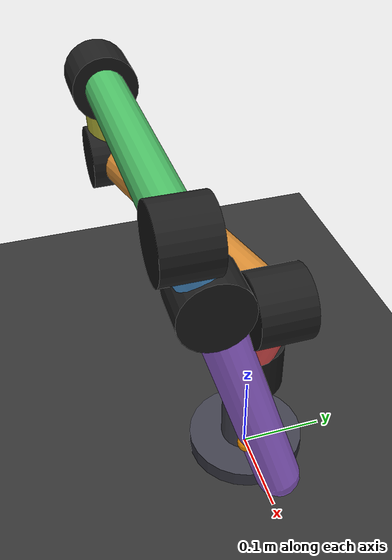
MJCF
<mujoco model="serial6r_posctrl">
  <compiler angle="radian" autolimits="true"/>
  <option integrator="implicitfast" gravity="0 0 -9.81" timestep="0.002"/>
  <default>
    <joint type="hinge" axis="0 0 1" damping="1.0" frictionloss="0.1" range="-3.14159 3.14159"/>
    <geom density="2000"/>
    <position kp="250" kv="25" ctrlrange="-3.14159 3.14159" forcerange="-150 150"/>
  </default>
  <worldbody>
    <light pos="0 0 2" dir="0 0 -1" diffuse="1 1 1"/>
    <geom name="floor" type="plane" size="2 2 0.1" rgba="0.2 0.2 0.2 1" density="0"/>
    <body name="base" pos="0 0 0">
      <geom name="foot" type="cylinder" fromto="0 0 0 0 0 0.02" size="0.07" rgba="0.25 0.25 0.3 1"/>
      <geom name="column" type="cylinder" fromto="0 0 0.02 0 0 0.0948" size="0.03" rgba="0.3 0.3 0.35 1"/>
      <body name="link1" pos="0.000000 0.000000 0.144763" quat="0.002699 0.000000 0.000000 -0.999996">
        <joint name="q1"/>
        <geom name="link1_g" type="capsule" fromto="0 0 0 -0.061099 0.000000 0.132184" size="0.025" rgba="0.85 0.3 0.3 1"/>
        <geom name="j1_g" type="cylinder" size="0.04 0.03" rgba="0.12 0.12 0.12 1"/>
        <body name="link2" pos="-0.061099 0.000000 0.132184" quat="0.707799 -0.706413 0.000828 0.000830">
          <joint name="q2"/>
          <geom name="link2_g" type="capsule" fromto="0 0 0 0.345932 0.000000 0.091502" size="0.025" rgba="0.85 0.55 0.2 1"/>
          <geom name="j2_g" type="cylinder" size="0.04 0.03" rgba="0.12 0.12 0.12 1"/>
          <body name="link3" pos="0.345932 0.000000 0.091502" quat="0.704644 -0.001551 -0.001561 -0.709558">
            <joint name="q3"/>
            <geom name="link3_g" type="capsule" fromto="0 0 0 0.103901 0.000000 0.005000" size="0.025" rgba="0.8 0.8 0.25 1"/>
            <geom name="j3_g" type="cylinder" size="0.04 0.03" rgba="0.12 0.12 0.12 1"/>
            <body name="link4" pos="0.103901 0.000000 0.005000" quat="0.705697 0.708499 0.003291 -0.003278">
              <joint name="q4"/>
              <geom name="link4_g" type="capsule" fromto="0 0 0 -0.000588 0.000000 0.344628" size="0.025" rgba="0.3 0.75 0.4 1"/>
              <geom name="j4_g" type="cylinder" size="0.04 0.03" rgba="0.12 0.12 0.12 1"/>
              <body name="link5" pos="-0.000588 0.000000 0.344628" quat="0.013053 -0.013195 -0.710781 -0.703168">
                <joint name="q5"/>
                <geom name="link5_g" type="capsule" fromto="0 0 0 0.074472 0.000000 -0.024818" size="0.025" rgba="0.3 0.6 0.85 1"/>
                <geom name="j5_g" type="cylinder" size="0.04 0.03" rgba="0.12 0.12 0.12 1"/>
                <body name="link6" pos="0.074472 0.000000 -0.024818" quat="0.501595 -0.493208 0.498313 0.506787">
                  <joint name="q6"/>
                  <geom name="link6_g" type="capsule" fromto="0 0 0 0.070882 -0.244194 0.030304" size="0.025" rgba="0.6 0.4 0.85 1"/>
                  <geom name="j6_g" type="cylinder" size="0.04 0.03" rgba="0.12 0.12 0.12 1"/>
                  <body name="ee" pos="0.070882 -0.244194 0.030304" quat="0.724562 -0.689210 0.000000 0.000000">
                    <site name="tcp" size="0.004" rgba="1 0 0 1"/>
                    <body name="d405_mount" pos="-0.03667 0.00798 0.05980" quat="0.68961 0.06423 -0.13501 -0.70858">
                      <inertial pos="0 0 0" mass="0.05" diaginertia="1e-5 1e-5 1e-5"/>
                      <site name="camera_optical_center" pos="0 0 0" size="0.010" rgba="1 0.6 0 0.9"/>
                      <camera name="ee_cam" mode="fixed" pos="0 0 0" fovy="65"/>
                    </body>
                  </body>
                </body>
              </body>
            </body>
          </body>
        </body>
      </body>
    </body>
  </worldbody>
  <actuator>
    <position name="p1" joint="q1"/>
    <position name="p2" joint="q2"/>
    <position name="p3" joint="q3"/>
    <position name="p4" joint="q4"/>
    <position name="p5" joint="q5"/>
    <position name="p6" joint="q6"/>
  </actuator>
  <sensor>
    <framepos name="tcp_pos" objtype="site" objname="tcp"/>
    <framequat name="tcp_quat" objtype="site" objname="tcp"/>
    <jointpos name="q1p" joint="q1"/>
  </sensor>
  <keyframe>
    <key name="ready" qpos="0.000000 -0.600000 0.600000 0.000000 0.600000 0.000000" ctrl="0.000000 -0.600000 0.600000 0.000000 0.600000 0.000000"/>
  </keyframe>
</mujoco>
